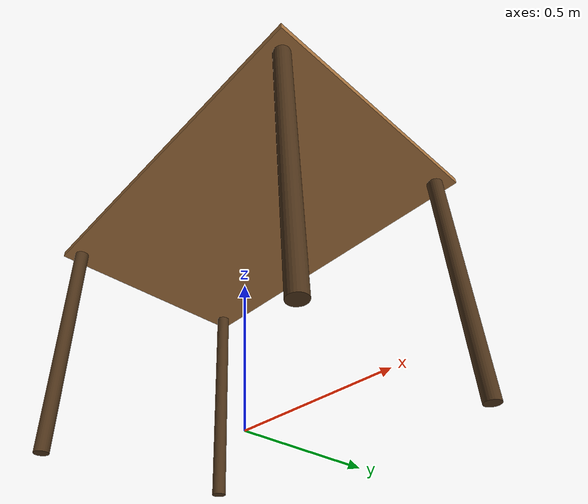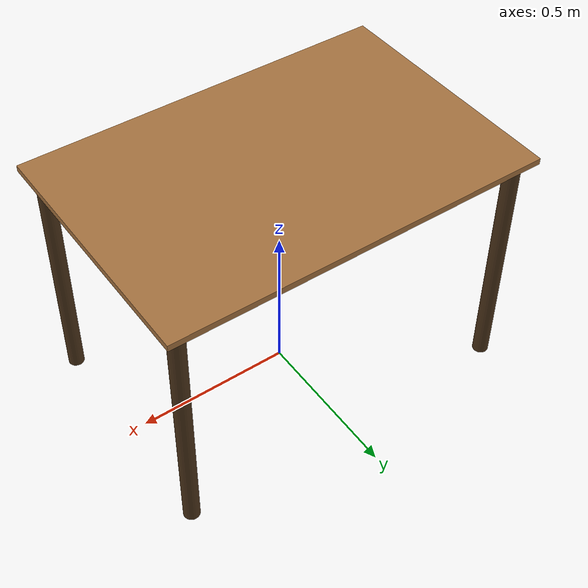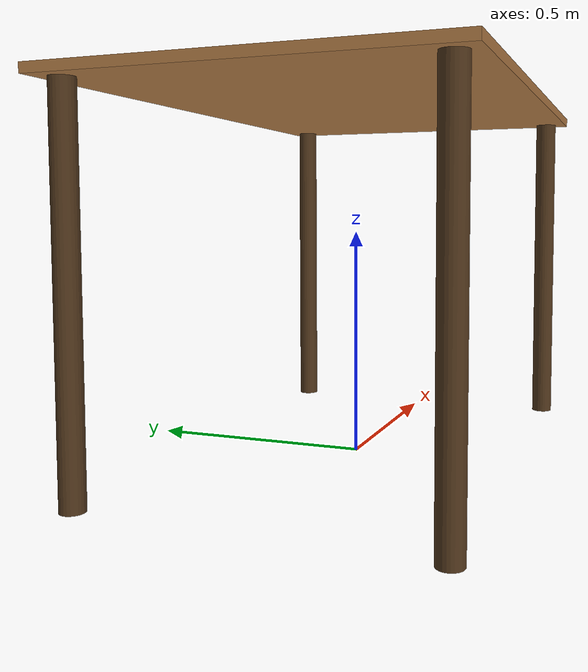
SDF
<?xml version="1.0"?>
<!--
  models/table/model.sdf
  Wooden table — 1.2m x 0.8m top, 0.8m tall.
  Robot base mounts at z=0.8 (table surface height).
  Pick zone (green mat) and place zone (red mat) sit on top.
-->
<sdf version="1.9">
  <model name="table">
    <static>true</static>

    <!-- Table top -->
    <link name="table_top">
      <pose>0 0 0.79 0 0 0</pose>
      <collision name="collision">
        <geometry><box><size>1.2 0.8 0.02</size></box></geometry>
      </collision>
      <visual name="visual">
        <geometry><box><size>1.2 0.8 0.02</size></box></geometry>
        <material>
          <ambient>0.55 0.35 0.15 1</ambient>
          <diffuse>0.65 0.45 0.25 1</diffuse>
          <specular>0.1 0.1 0.1 1</specular>
        </material>
      </visual>
    </link>

    <!-- Leg front-left -->
    <link name="leg_fl">
      <pose>-0.55 0.35 0.395 0 0 0</pose>
      <collision name="c"><geometry><cylinder><radius>0.025</radius><length>0.79</length></cylinder></geometry></collision>
      <visual    name="v">
        <geometry><cylinder><radius>0.025</radius><length>0.79</length></cylinder></geometry>
        <material><ambient>0.3 0.2 0.1 1</ambient><diffuse>0.3 0.2 0.1 1</diffuse></material>
      </visual>
    </link>

    <!-- Leg front-right -->
    <link name="leg_fr">
      <pose>0.55 0.35 0.395 0 0 0</pose>
      <collision name="c"><geometry><cylinder><radius>0.025</radius><length>0.79</length></cylinder></geometry></collision>
      <visual    name="v">
        <geometry><cylinder><radius>0.025</radius><length>0.79</length></cylinder></geometry>
        <material><ambient>0.3 0.2 0.1 1</ambient><diffuse>0.3 0.2 0.1 1</diffuse></material>
      </visual>
    </link>

    <!-- Leg back-left -->
    <link name="leg_bl">
      <pose>-0.55 -0.35 0.395 0 0 0</pose>
      <collision name="c"><geometry><cylinder><radius>0.025</radius><length>0.79</length></cylinder></geometry></collision>
      <visual    name="v">
        <geometry><cylinder><radius>0.025</radius><length>0.79</length></cylinder></geometry>
        <material><ambient>0.3 0.2 0.1 1</ambient><diffuse>0.3 0.2 0.1 1</diffuse></material>
      </visual>
    </link>

    <!-- Leg back-right -->
    <link name="leg_br">
      <pose>0.55 -0.35 0.395 0 0 0</pose>
      <collision name="c"><geometry><cylinder><radius>0.025</radius><length>0.79</length></cylinder></geometry></collision>
      <visual    name="v">
        <geometry><cylinder><radius>0.025</radius><length>0.79</length></cylinder></geometry>
        <material><ambient>0.3 0.2 0.1 1</ambient><diffuse>0.3 0.2 0.1 1</diffuse></material>
      </visual>
    </link>

  </model>
</sdf>
